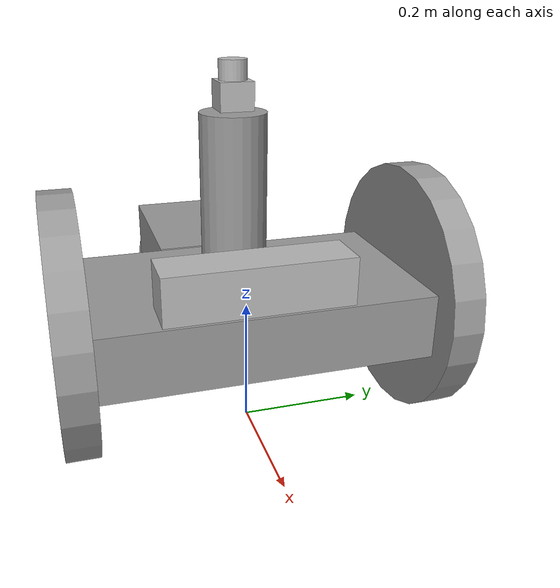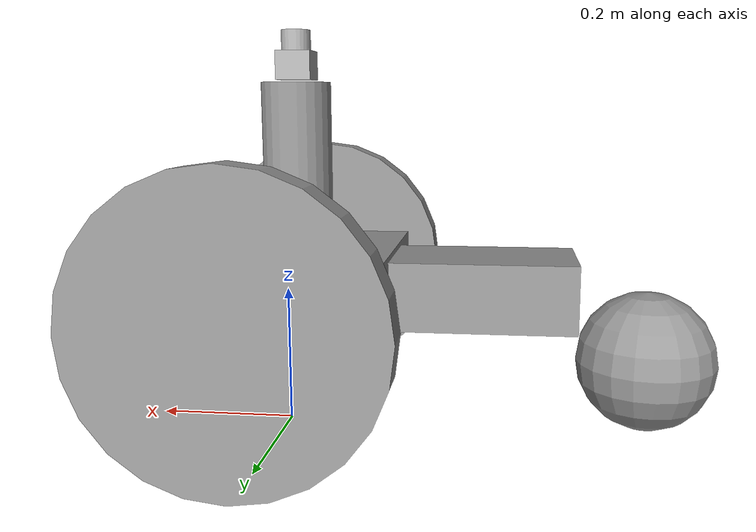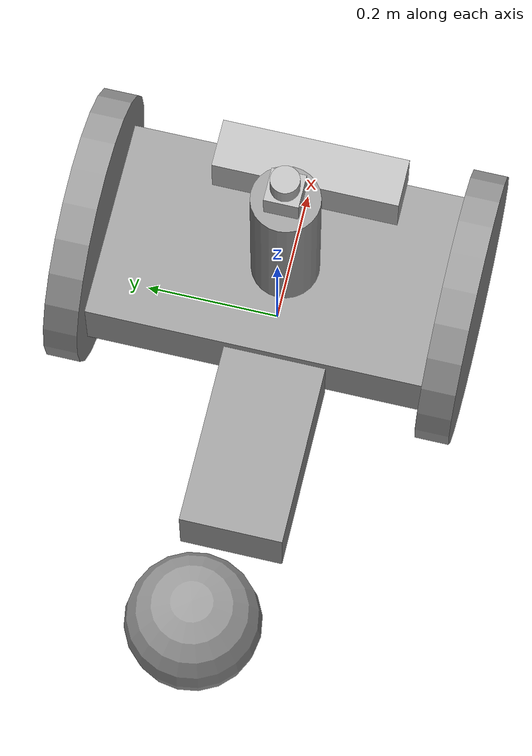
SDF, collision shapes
<?xml version='1.0'?>
<sdf version='1.6'>
  <model name='mobile_robot'>
    <link name='link_0'>
      <pose frame=''>0 0 0.2 0 -0 0</pose>
      <inertial>
        <mass>1</mass>
        <inertia>
          <ixx>0.166667</ixx>
          <ixy>0</ixy>
          <ixz>0</ixz>
          <iyy>0.166667</iyy>
          <iyz>0</iyz>
          <izz>0.166667</izz>
        </inertia>
        <pose frame=''>0 0 0 0 -0 0</pose>
      </inertial>
      <self_collide>0</self_collide>
      <kinematic>0</kinematic>
      <visual name='visual'>
        <pose frame=''>0 0 0 0 -0 0</pose>
        <geometry>
          <box>
            <size>0.3 0.5 0.1</size>
          </box>
        </geometry>
        <material>
          <lighting>1</lighting>
          <script>
            <uri>file://media/materials/scripts/gazebo.material</uri>
            <name>Gazebo/Grey</name>
          </script>
          <ambient>0.3 0.3 0.3 1</ambient>
          <diffuse>0.7 0.7 0.7 1</diffuse>
          <specular>0.01 0.01 0.01 1</specular>
          <emissive>0 0 0 1</emissive>
          <shader type='vertex'>
            <normal_map>__default__</normal_map>
          </shader>
        </material>
        <transparency>0</transparency>
        <cast_shadows>1</cast_shadows>
      </visual>
      <collision name='collision'>
        <laser_retro>0</laser_retro>
        <max_contacts>10</max_contacts>
        <pose frame=''>0 0 0 0 -0 0</pose>
        <geometry>
          <box>
            <size>0.3 0.5 0.1</size>
          </box>
        </geometry>
        <surface>
          <friction>
            <ode>
              <mu>1</mu>
              <mu2>1</mu2>
              <fdir1>0 0 0</fdir1>
              <slip1>0</slip1>
              <slip2>0</slip2>
            </ode>
            <torsional>
              <coefficient>1</coefficient>
              <patch_radius>0</patch_radius>
              <surface_radius>0</surface_radius>
              <use_patch_radius>1</use_patch_radius>
              <ode>
                <slip>0</slip>
              </ode>
            </torsional>
          </friction>
          <bounce>
            <restitution_coefficient>0</restitution_coefficient>
            <threshold>1e+06</threshold>
          </bounce>
          <contact>
            <collide_without_contact>0</collide_without_contact>
            <collide_without_contact_bitmask>1</collide_without_contact_bitmask>
            <collide_bitmask>1</collide_bitmask>
            <ode>
              <soft_cfm>0</soft_cfm>
              <soft_erp>0.2</soft_erp>
              <kp>1e+13</kp>
              <kd>1</kd>
              <max_vel>0.01</max_vel>
              <min_depth>0</min_depth>
            </ode>
            <bullet>
              <split_impulse>1</split_impulse>
              <split_impulse_penetration_threshold>-0.01</split_impulse_penetration_threshold>
              <soft_cfm>0</soft_cfm>
              <soft_erp>0.2</soft_erp>
              <kp>1e+13</kp>
              <kd>1</kd>
            </bullet>
          </contact>
        </surface>
      </collision>
    </link>
    <link name='link_4'>
      <pose frame=''>-0.29 -0.0325 0.2 0 -0 0</pose>
      <inertial>
        <mass>0.536989</mass>
        <inertia>
          <ixx>0.0894983</ixx>
          <ixy>0</ixy>
          <ixz>0</ixz>
          <iyy>0.0576529</iyy>
          <iyz>0</iyz>
          <izz>0.0576529</izz>
        </inertia>
        <pose frame=''>0 0 0 0 -0 0</pose>
      </inertial>
      <self_collide>0</self_collide>
      <kinematic>0</kinematic>
      <visual name='visual'>
        <pose frame=''>0 0 0 0 -0 0</pose>
        <geometry>
          <box>
            <size>0.268495 0.15 0.1</size>
          </box>
        </geometry>
        <material>
          <lighting>1</lighting>
          <script>
            <uri>file://media/materials/scripts/gazebo.material</uri>
            <name>Gazebo/Grey</name>
          </script>
          <ambient>0.3 0.3 0.3 1</ambient>
          <diffuse>0.7 0.7 0.7 1</diffuse>
          <specular>0.01 0.01 0.01 1</specular>
          <emissive>0 0 0 1</emissive>
          <shader type='vertex'>
            <normal_map>__default__</normal_map>
          </shader>
        </material>
        <transparency>0</transparency>
        <cast_shadows>1</cast_shadows>
      </visual>
      <collision name='collision'>
        <laser_retro>0</laser_retro>
        <max_contacts>10</max_contacts>
        <pose frame=''>0 0 0 0 -0 0</pose>
        <geometry>
          <box>
            <size>0.268495 0.15 0.1</size>
          </box>
        </geometry>
        <surface>
          <friction>
            <ode>
              <mu>1</mu>
              <mu2>1</mu2>
              <fdir1>0 0 0</fdir1>
              <slip1>0</slip1>
              <slip2>0</slip2>
            </ode>
            <torsional>
              <coefficient>1</coefficient>
              <patch_radius>0</patch_radius>
              <surface_radius>0</surface_radius>
              <use_patch_radius>1</use_patch_radius>
              <ode>
                <slip>0</slip>
              </ode>
            </torsional>
          </friction>
          <bounce>
            <restitution_coefficient>0</restitution_coefficient>
            <threshold>1e+06</threshold>
          </bounce>
          <contact>
            <collide_without_contact>0</collide_without_contact>
            <collide_without_contact_bitmask>1</collide_without_contact_bitmask>
            <collide_bitmask>1</collide_bitmask>
            <ode>
              <soft_cfm>0</soft_cfm>
              <soft_erp>0.2</soft_erp>
              <kp>1e+13</kp>
              <kd>1</kd>
              <max_vel>0.01</max_vel>
              <min_depth>0</min_depth>
            </ode>
            <bullet>
              <split_impulse>1</split_impulse>
              <split_impulse_penetration_threshold>-0.01</split_impulse_penetration_threshold>
              <soft_cfm>0</soft_cfm>
              <soft_erp>0.2</soft_erp>
              <kp>1e+13</kp>
              <kd>1</kd>
            </bullet>
          </contact>
        </surface>
      </collision>
    </link>
    <link name='link_5'>
      <pose frame=''>-0.524248 0 0.105907 0 -0 0</pose>
      <inertial>
        <mass>1</mass>
        <inertia>
          <ixx>0.1</ixx>
          <ixy>0</ixy>
          <ixz>0</ixz>
          <iyy>0.1</iyy>
          <iyz>0</iyz>
          <izz>0.1</izz>
        </inertia>
        <pose frame=''>0 0 0 0 -0 0</pose>
      </inertial>
      <self_collide>0</self_collide>
      <kinematic>0</kinematic>
      <visual name='visual'>
        <pose frame=''>0 0 0 0 -0 0</pose>
        <geometry>
          <sphere>
            <radius>0.1</radius>
          </sphere>
        </geometry>
        <material>
          <lighting>1</lighting>
          <script>
            <uri>file://media/materials/scripts/gazebo.material</uri>
            <name>Gazebo/Grey</name>
          </script>
          <ambient>0.3 0.3 0.3 1</ambient>
          <diffuse>0.7 0.7 0.7 1</diffuse>
          <specular>0.01 0.01 0.01 1</specular>
          <emissive>0 0 0 1</emissive>
          <shader type='vertex'>
            <normal_map>__default__</normal_map>
          </shader>
        </material>
        <transparency>0</transparency>
        <cast_shadows>1</cast_shadows>
      </visual>
      <collision name='collision'>
        <laser_retro>0</laser_retro>
        <max_contacts>10</max_contacts>
        <pose frame=''>0 0 0 0 -0 0</pose>
        <geometry>
          <sphere>
            <radius>0.1</radius>
          </sphere>
        </geometry>
        <surface>
          <friction>
            <ode>
              <mu>0</mu>
              <mu2>0</mu2>
              <fdir1>0 0 0</fdir1>
              <slip1>1</slip1>
              <slip2>1</slip2>
            </ode>
            <torsional>
              <coefficient>1</coefficient>
              <patch_radius>0</patch_radius>
              <surface_radius>0</surface_radius>
              <use_patch_radius>1</use_patch_radius>
              <ode>
                <slip>0</slip>
              </ode>
            </torsional>
          </friction>
          <bounce>
            <restitution_coefficient>0</restitution_coefficient>
            <threshold>1e+06</threshold>
          </bounce>
          <contact>
            <collide_without_contact>0</collide_without_contact>
            <collide_without_contact_bitmask>1</collide_without_contact_bitmask>
            <collide_bitmask>1</collide_bitmask>
            <ode>
              <soft_cfm>0</soft_cfm>
              <soft_erp>0.2</soft_erp>
              <kp>1e+13</kp>
              <kd>1</kd>
              <max_vel>0.01</max_vel>
              <min_depth>0</min_depth>
            </ode>
            <bullet>
              <split_impulse>1</split_impulse>
              <split_impulse_penetration_threshold>-0.01</split_impulse_penetration_threshold>
              <soft_cfm>0</soft_cfm>
              <soft_erp>0.2</soft_erp>
              <kp>1e+13</kp>
              <kd>1</kd>
            </bullet>
          </contact>
        </surface>
      </collision>
    </link>
    <link name='link_6'>
      <pose frame=''>-0.015212 -0.015212 0.377009 0 -0 0</pose>
      <inertial>
        <mass>1</mass>
        <inertia>
          <ixx>0.145833</ixx>
          <ixy>0</ixy>
          <ixz>0</ixz>
          <iyy>0.145833</iyy>
          <iyz>0</iyz>
          <izz>0.125</izz>
        </inertia>
        <pose frame=''>0 0 0 0 -0 0</pose>
      </inertial>
      <self_collide>0</self_collide>
      <kinematic>0</kinematic>
      <visual name='visual'>
        <pose frame=''>0 0 0 0 -0 0</pose>
        <geometry>
          <cylinder>
            <radius>0.05</radius>
            <length>0.25</length>
          </cylinder>
        </geometry>
        <material>
          <lighting>1</lighting>
          <script>
            <uri>file://media/materials/scripts/gazebo.material</uri>
            <name>Gazebo/Grey</name>
          </script>
          <ambient>0.3 0.3 0.3 1</ambient>
          <diffuse>0.7 0.7 0.7 1</diffuse>
          <specular>0.01 0.01 0.01 1</specular>
          <emissive>0 0 0 1</emissive>
          <shader type='vertex'>
            <normal_map>__default__</normal_map>
          </shader>
        </material>
        <transparency>0</transparency>
        <cast_shadows>1</cast_shadows>
      </visual>
      <collision name='collision'>
        <laser_retro>0</laser_retro>
        <max_contacts>10</max_contacts>
        <pose frame=''>0 0 0 0 -0 0</pose>
        <geometry>
          <cylinder>
            <radius>0.05</radius>
            <length>0.25</length>
          </cylinder>
        </geometry>
        <surface>
          <friction>
            <ode>
              <mu>1</mu>
              <mu2>1</mu2>
              <fdir1>0 0 0</fdir1>
              <slip1>0</slip1>
              <slip2>0</slip2>
            </ode>
            <torsional>
              <coefficient>1</coefficient>
              <patch_radius>0</patch_radius>
              <surface_radius>0</surface_radius>
              <use_patch_radius>1</use_patch_radius>
              <ode>
                <slip>0</slip>
              </ode>
            </torsional>
          </friction>
          <bounce>
            <restitution_coefficient>0</restitution_coefficient>
            <threshold>1e+06</threshold>
          </bounce>
          <contact>
            <collide_without_contact>0</collide_without_contact>
            <collide_without_contact_bitmask>1</collide_without_contact_bitmask>
            <collide_bitmask>1</collide_bitmask>
            <ode>
              <soft_cfm>0</soft_cfm>
              <soft_erp>0.2</soft_erp>
              <kp>1e+13</kp>
              <kd>1</kd>
              <max_vel>0.01</max_vel>
              <min_depth>0</min_depth>
            </ode>
            <bullet>
              <split_impulse>1</split_impulse>
              <split_impulse_penetration_threshold>-0.01</split_impulse_penetration_threshold>
              <soft_cfm>0</soft_cfm>
              <soft_erp>0.2</soft_erp>
              <kp>1e+13</kp>
              <kd>1</kd>
            </bullet>
          </contact>
        </surface>
      </collision>
    </link>
    <link name='link_8'>
      <pose frame=''>0 -0.275019 0.204086 1.5707 -0 0</pose>
      <inertial>
        <mass>1</mass>
        <inertia>
          <ixx>0.145833</ixx>
          <ixy>0</ixy>
          <ixz>0</ixz>
          <iyy>0.145833</iyy>
          <iyz>0</iyz>
          <izz>0.125</izz>
        </inertia>
        <pose frame=''>0 0 0 0 -0 0</pose>
      </inertial>
      <self_collide>0</self_collide>
      <kinematic>0</kinematic>
      <visual name='visual'>
        <pose frame=''>0 0 0 0 -0 0</pose>
        <geometry>
          <cylinder>
            <radius>0.2</radius>
            <length>0.05</length>
          </cylinder>
        </geometry>
        <material>
          <lighting>1</lighting>
          <script>
            <uri>file://media/materials/scripts/gazebo.material</uri>
            <name>Gazebo/Grey</name>
          </script>
          <ambient>0.3 0.3 0.3 1</ambient>
          <diffuse>0.7 0.7 0.7 1</diffuse>
          <specular>0.01 0.01 0.01 1</specular>
          <emissive>0 0 0 1</emissive>
          <shader type='vertex'>
            <normal_map>__default__</normal_map>
          </shader>
        </material>
        <transparency>0</transparency>
        <cast_shadows>1</cast_shadows>
      </visual>
      <collision name='collision'>
        <laser_retro>0</laser_retro>
        <max_contacts>10</max_contacts>
        <pose frame=''>0 0 0 0 -0 0</pose>
        <geometry>
          <cylinder>
            <radius>0.2</radius>
            <length>0.05</length>
          </cylinder>
        </geometry>
        <surface>
          <friction>
            <ode>
              <mu>1</mu>
              <mu2>1</mu2>
              <fdir1>0 0 0</fdir1>
              <slip1>0</slip1>
              <slip2>0</slip2>
            </ode>
            <torsional>
              <coefficient>1</coefficient>
              <patch_radius>0</patch_radius>
              <surface_radius>0</surface_radius>
              <use_patch_radius>1</use_patch_radius>
              <ode>
                <slip>0</slip>
              </ode>
            </torsional>
          </friction>
          <bounce>
            <restitution_coefficient>0</restitution_coefficient>
            <threshold>1e+06</threshold>
          </bounce>
          <contact>
            <collide_without_contact>0</collide_without_contact>
            <collide_without_contact_bitmask>1</collide_without_contact_bitmask>
            <collide_bitmask>1</collide_bitmask>
            <ode>
              <soft_cfm>0</soft_cfm>
              <soft_erp>0.2</soft_erp>
              <kp>1e+13</kp>
              <kd>1</kd>
              <max_vel>0.01</max_vel>
              <min_depth>0</min_depth>
            </ode>
            <bullet>
              <split_impulse>1</split_impulse>
              <split_impulse_penetration_threshold>-0.01</split_impulse_penetration_threshold>
              <soft_cfm>0</soft_cfm>
              <soft_erp>0.2</soft_erp>
              <kp>1e+13</kp>
              <kd>1</kd>
            </bullet>
          </contact>
        </surface>
      </collision>
    </link>
    <link name='link_8_clone'>
      <pose frame=''>0 0.275019 0.20725 1.5707 -0 0</pose>
      <inertial>
        <mass>1</mass>
        <inertia>
          <ixx>0.145833</ixx>
          <ixy>0</ixy>
          <ixz>0</ixz>
          <iyy>0.145833</iyy>
          <iyz>0</iyz>
          <izz>0.125</izz>
        </inertia>
        <pose frame=''>0 0 0 0 -0 0</pose>
      </inertial>
      <self_collide>0</self_collide>
      <kinematic>0</kinematic>
      <visual name='visual'>
        <pose frame=''>0 0 0 0 -0 0</pose>
        <geometry>
          <cylinder>
            <radius>0.2</radius>
            <length>0.05</length>
          </cylinder>
        </geometry>
        <material>
          <lighting>1</lighting>
          <script>
            <uri>file://media/materials/scripts/gazebo.material</uri>
            <name>Gazebo/Grey</name>
          </script>
          <ambient>0.3 0.3 0.3 1</ambient>
          <diffuse>0.7 0.7 0.7 1</diffuse>
          <specular>0.01 0.01 0.01 1</specular>
          <emissive>0 0 0 1</emissive>
          <shader type='vertex'>
            <normal_map>__default__</normal_map>
          </shader>
        </material>
        <transparency>0</transparency>
        <cast_shadows>1</cast_shadows>
      </visual>
      <collision name='collision'>
        <laser_retro>0</laser_retro>
        <max_contacts>10</max_contacts>
        <pose frame=''>0 0 0 0 -0 0</pose>
        <geometry>
          <cylinder>
            <radius>0.2</radius>
            <length>0.05</length>
          </cylinder>
        </geometry>
        <surface>
          <friction>
            <ode>
              <mu>1</mu>
              <mu2>1</mu2>
              <fdir1>0 0 0</fdir1>
              <slip1>0</slip1>
              <slip2>0</slip2>
            </ode>
            <torsional>
              <coefficient>1</coefficient>
              <patch_radius>0</patch_radius>
              <surface_radius>0</surface_radius>
              <use_patch_radius>1</use_patch_radius>
              <ode>
                <slip>0</slip>
              </ode>
            </torsional>
          </friction>
          <bounce>
            <restitution_coefficient>0</restitution_coefficient>
            <threshold>1e+06</threshold>
          </bounce>
          <contact>
            <collide_without_contact>0</collide_without_contact>
            <collide_without_contact_bitmask>1</collide_without_contact_bitmask>
            <collide_bitmask>1</collide_bitmask>
            <ode>
              <soft_cfm>0</soft_cfm>
              <soft_erp>0.2</soft_erp>
              <kp>1e+13</kp>
              <kd>1</kd>
              <max_vel>0.01</max_vel>
              <min_depth>0</min_depth>
            </ode>
            <bullet>
              <split_impulse>1</split_impulse>
              <split_impulse_penetration_threshold>-0.01</split_impulse_penetration_threshold>
              <soft_cfm>0</soft_cfm>
              <soft_erp>0.2</soft_erp>
              <kp>1e+13</kp>
              <kd>1</kd>
            </bullet>
          </contact>
        </surface>
      </collision>
    </link>
    <model name='hokuyo'>
      <pose frame=''>-0.016851 -0.014596 0.540174 0 -0 0</pose>
      <link name='link'>
        <inertial>
          <mass>0.1</mass>
          <inertia>
            <ixx>1</ixx>
            <ixy>0</ixy>
            <ixz>0</ixz>
            <iyy>1</iyy>
            <iyz>0</iyz>
            <izz>1</izz>
          </inertia>
        </inertial>
        <visual name='visual'>
          <geometry>
            <mesh>
              <uri>model://hokuyo/meshes/hokuyo.dae</uri>
            </mesh>
          </geometry>
        </visual>
        <collision name='collision-base'>
          <pose frame=''>0 0 -0.0145 0 -0 0</pose>
          <geometry>
            <box>
              <size>0.05 0.05 0.041</size>
            </box>
          </geometry>
          <max_contacts>10</max_contacts>
          <surface>
            <contact>
              <ode/>
            </contact>
            <bounce/>
            <friction>
              <torsional>
                <ode/>
              </torsional>
              <ode/>
            </friction>
          </surface>
        </collision>
        <collision name='collision-top'>
          <pose frame=''>0 0 0.0205 0 -0 0</pose>
          <geometry>
            <cylinder>
              <radius>0.021</radius>
              <length>0.029</length>
            </cylinder>
          </geometry>
          <max_contacts>10</max_contacts>
          <surface>
            <contact>
              <ode/>
            </contact>
            <bounce/>
            <friction>
              <torsional>
                <ode/>
              </torsional>
              <ode/>
            </friction>
          </surface>
        </collision>
        <sensor name='laser' type='ray'>
          <pose frame=''>0.01 0 0.0175 0 -0 0</pose>
          <ray>
            <scan>
              <horizontal>
                <samples>640</samples>
                <resolution>1</resolution>
                <min_angle>-2.26889</min_angle>
                <max_angle>2.2689</max_angle>
              </horizontal>
              <vertical>
                <samples>1</samples>
                <min_angle>0</min_angle>
                <max_angle>0</max_angle>
              </vertical>
            </scan>
            <range>
              <min>0.08</min>
              <max>10</max>
              <resolution>0.01</resolution>
            </range>
          </ray>
          <plugin name='laser' filename='libRayPlugin.so'/>
          <always_on>1</always_on>
          <update_rate>30</update_rate>
          <visualize>1</visualize>
        </sensor>
        <self_collide>0</self_collide>
        <kinematic>0</kinematic>
      </link>
    </model>
    <model name='kinect'>
      <pose frame=''>0.119116 -0.020589 0.291685 0 -0 0</pose>
      <link name='link'>
        <inertial>
          <mass>0.1</mass>
          <inertia>
            <ixx>1</ixx>
            <ixy>0</ixy>
            <ixz>0</ixz>
            <iyy>1</iyy>
            <iyz>0</iyz>
            <izz>1</izz>
          </inertia>
        </inertial>
        <collision name='collision'>
          <geometry>
            <box>
              <size>0.073 0.276 0.072</size>
            </box>
          </geometry>
          <max_contacts>10</max_contacts>
          <surface>
            <contact>
              <ode/>
            </contact>
            <bounce/>
            <friction>
              <torsional>
                <ode/>
              </torsional>
              <ode/>
            </friction>
          </surface>
        </collision>
        <visual name='visual'>
          <geometry>
            <mesh>
              <uri>model://kinect/meshes/kinect.dae</uri>
            </mesh>
          </geometry>
        </visual>
        <sensor name='camera' type='depth'>
          <update_rate>20</update_rate>
          <camera name='__default__'>
            <horizontal_fov>1.0472</horizontal_fov>
            <image>
              <width>640</width>
              <height>480</height>
              <format>R8G8B8</format>
            </image>
            <clip>
              <near>0.05</near>
              <far>3</far>
            </clip>
          </camera>
        </sensor>
        <self_collide>0</self_collide>
        <kinematic>0</kinematic>
      </link>
    </model>
    <joint name='link_0_JOINT_18' type='revolute'>
      <parent>link_0</parent>
      <child>link_8</child>
      <pose frame=''>0 0 0 0 -0 0</pose>
      <axis>
        <xyz>0 0 1</xyz>
        <use_parent_model_frame>0</use_parent_model_frame>
        <limit>
          <lower>-1.79769e+308</lower>
          <upper>1.79769e+308</upper>
          <effort>-1</effort>
          <velocity>-1</velocity>
        </limit>
        <dynamics>
          <spring_reference>0</spring_reference>
          <spring_stiffness>0</spring_stiffness>
          <damping>0</damping>
          <friction>0</friction>
        </dynamics>
      </axis>
      <physics>
        <ode>
          <limit>
            <cfm>0</cfm>
            <erp>0.2</erp>
          </limit>
          <suspension>
            <cfm>0</cfm>
            <erp>0.2</erp>
          </suspension>
        </ode>
      </physics>
    </joint>
    <joint name='link_0_JOINT_19' type='revolute'>
      <parent>link_0</parent>
      <child>link_8_clone</child>
      <pose frame=''>0 0 0 0 -0 0</pose>
      <axis>
        <xyz>0 0 1</xyz>
        <use_parent_model_frame>0</use_parent_model_frame>
        <limit>
          <lower>-1.79769e+308</lower>
          <upper>1.79769e+308</upper>
          <effort>-1</effort>
          <velocity>-1</velocity>
        </limit>
        <dynamics>
          <spring_reference>0</spring_reference>
          <spring_stiffness>0</spring_stiffness>
          <damping>0</damping>
          <friction>0</friction>
        </dynamics>
      </axis>
      <physics>
        <ode>
          <limit>
            <cfm>0</cfm>
            <erp>0.2</erp>
          </limit>
          <suspension>
            <cfm>0</cfm>
            <erp>0.2</erp>
          </suspension>
        </ode>
      </physics>
    </joint>
    <joint name='link_0_JOINT_20' type='fixed'>
      <parent>link_0</parent>
      <child>link_6</child>
      <pose frame=''>0 0 0 0 -0 0</pose>
      <physics>
        <ode>
          <limit>
            <cfm>0</cfm>
            <erp>0.2</erp>
          </limit>
          <suspension>
            <cfm>0</cfm>
            <erp>0.2</erp>
          </suspension>
        </ode>
      </physics>
    </joint>
    <joint name='link_0_JOINT_21' type='fixed'>
      <parent>link_0</parent>
      <child>link_4</child>
      <pose frame=''>0 0 0 0 -0 0</pose>
      <physics>
        <ode>
          <limit>
            <cfm>0</cfm>
            <erp>0.2</erp>
          </limit>
          <suspension>
            <cfm>0</cfm>
            <erp>0.2</erp>
          </suspension>
        </ode>
      </physics>
    </joint>
    <joint name='link_4_JOINT_22' type='fixed'>
      <parent>link_4</parent>
      <child>link_5</child>
      <pose frame=''>0 0 0 0 -0 0</pose>
      <physics>
        <ode>
          <limit>
            <cfm>0</cfm>
            <erp>0.2</erp>
          </limit>
          <suspension>
            <cfm>0</cfm>
            <erp>0.2</erp>
          </suspension>
        </ode>
      </physics>
    </joint>
    <static>0</static>
    <allow_auto_disable>1</allow_auto_disable>
  </model>
</sdf>
